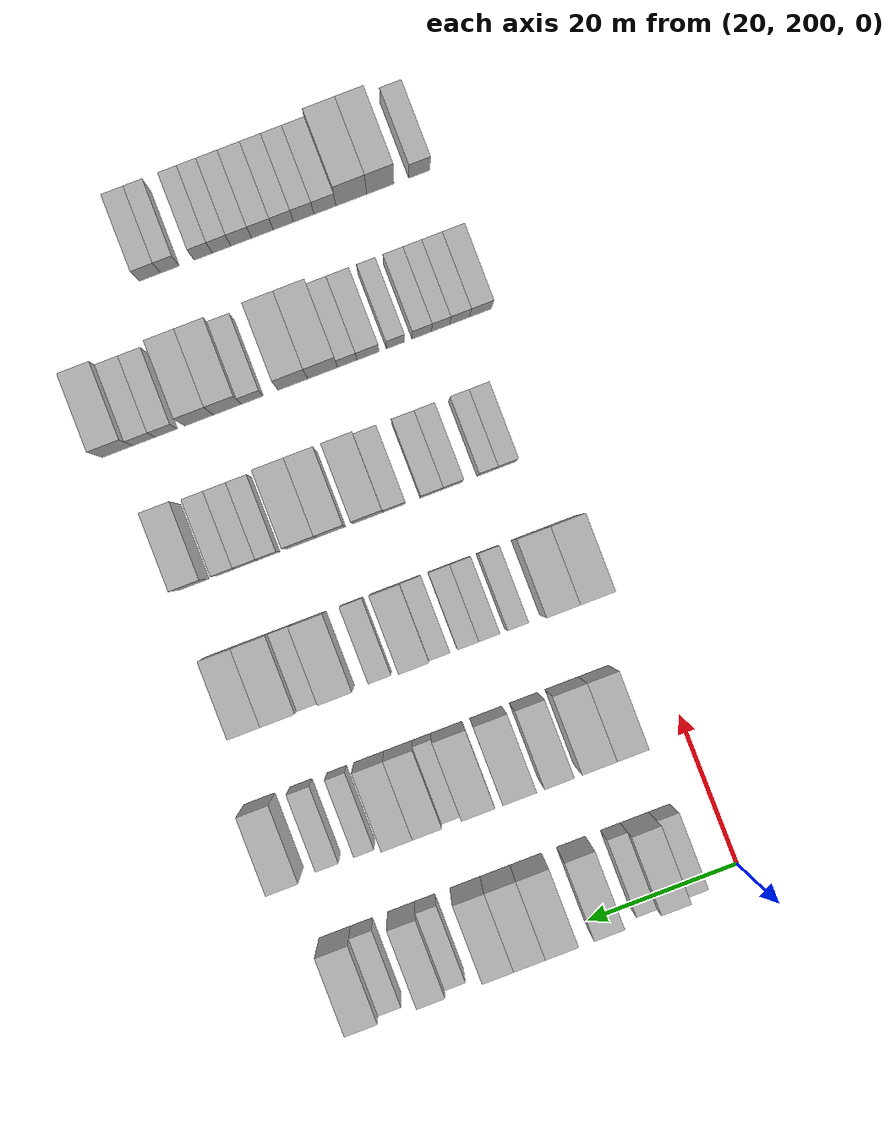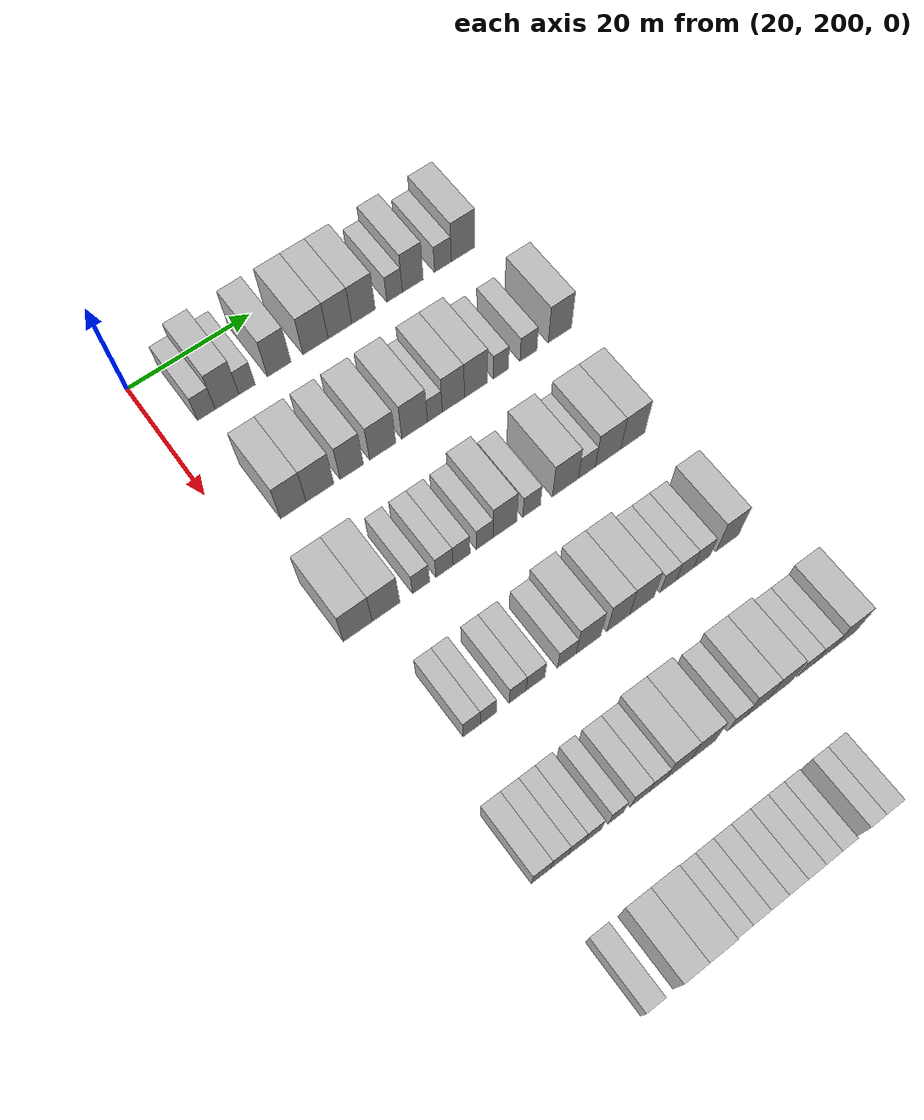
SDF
<sdf version="1.6">
 <world name="default">
  <model name="building_141">
   <static>1</static>
   <pose>25.0000 206.6023 0 0.000000 0.000000 0.000000</pose>
   <link name="link">
    <pose>0 0 3.00 0 0 0</pose>
    <collision name="collision"><geometry><box><size>10.0000 2.8620 6.0000</size></box></geometry></collision>
    <visual name="visual">
     <cast_shadows>0</cast_shadows>
     <geometry><box><size>10.0000 2.8620 6.0000</size></box></geometry>
     <material>
      <script>
       <uri>model://HANNAS_wall/materials/scripts</uri>
       <uri>model://HANNAS_wall/materials/textures</uri>
       <name>vrc/HANNAS_wall</name>
      </script>
     </material>
    </visual>
   </link>
  </model>
  <model name="building_142">
   <static>1</static>
   <pose>25.0000 209.9455 0 0.000000 0.000000 0.000000</pose>
   <link name="link">
    <pose>0 0 4.50 0 0 0</pose>
    <collision name="collision"><geometry><box><size>10.0000 3.8244 9.0000</size></box></geometry></collision>
    <visual name="visual">
     <cast_shadows>0</cast_shadows>
     <geometry><box><size>10.0000 3.8244 9.0000</size></box></geometry>
     <material>
      <script>
       <uri>model://HANNAS_wall/materials/scripts</uri>
       <uri>model://HANNAS_wall/materials/textures</uri>
       <name>vrc/HANNAS_wall</name>
      </script>
     </material>
    </visual>
   </link>
  </model>
  <model name="building_143">
   <static>1</static>
   <pose>25.0000 213.1919 0 0.000000 0.000000 0.000000</pose>
   <link name="link">
    <pose>0 0 3.00 0 0 0</pose>
    <collision name="collision"><geometry><box><size>10.0000 2.6684 6.0000</size></box></geometry></collision>
    <visual name="visual">
     <cast_shadows>0</cast_shadows>
     <geometry><box><size>10.0000 2.6684 6.0000</size></box></geometry>
     <material>
      <script>
       <uri>model://HANNAS_wall/materials/scripts</uri>
       <uri>model://HANNAS_wall/materials/textures</uri>
       <name>vrc/HANNAS_wall</name>
      </script>
     </material>
    </visual>
   </link>
  </model>
  <model name="building_144">
   <static>1</static>
   <pose>25.0000 218.4751 0 0.000000 0.000000 0.000000</pose>
   <link name="link">
    <pose>0 0 4.50 0 0 0</pose>
    <collision name="collision"><geometry><box><size>10.0000 3.8980 9.0000</size></box></geometry></collision>
    <visual name="visual">
     <cast_shadows>0</cast_shadows>
     <geometry><box><size>10.0000 3.8980 9.0000</size></box></geometry>
     <material>
      <script>
       <uri>model://HANNAS_wall/materials/scripts</uri>
       <uri>model://HANNAS_wall/materials/textures</uri>
       <name>vrc/HANNAS_wall</name>
      </script>
     </material>
    </visual>
   </link>
  </model>
  <model name="building_145">
   <static>1</static>
   <pose>25.0000 224.5421 0 0.000000 0.000000 0.000000</pose>
   <link name="link">
    <pose>0 0 4.50 0 0 0</pose>
    <collision name="collision"><geometry><box><size>10.0000 4.2361 9.0000</size></box></geometry></collision>
    <visual name="visual">
     <cast_shadows>0</cast_shadows>
     <geometry><box><size>10.0000 4.2361 9.0000</size></box></geometry>
     <material>
      <script>
       <uri>model://HANNAS_wall/materials/scripts</uri>
       <uri>model://HANNAS_wall/materials/textures</uri>
       <name>vrc/HANNAS_wall</name>
      </script>
     </material>
    </visual>
   </link>
  </model>
  <model name="building_146">
   <static>1</static>
   <pose>25.0000 228.6811 0 0.000000 0.000000 0.000000</pose>
   <link name="link">
    <pose>0 0 4.50 0 0 0</pose>
    <collision name="collision"><geometry><box><size>10.0000 4.0419 9.0000</size></box></geometry></collision>
    <visual name="visual">
     <cast_shadows>0</cast_shadows>
     <geometry><box><size>10.0000 4.0419 9.0000</size></box></geometry>
     <material>
      <script>
       <uri>model://HANNAS_wall/materials/scripts</uri>
       <uri>model://HANNAS_wall/materials/textures</uri>
       <name>vrc/HANNAS_wall</name>
      </script>
     </material>
    </visual>
   </link>
  </model>
  <model name="building_147">
   <static>1</static>
   <pose>25.0000 232.7132 0 0.000000 0.000000 0.000000</pose>
   <link name="link">
    <pose>0 0 4.50 0 0 0</pose>
    <collision name="collision"><geometry><box><size>10.0000 4.0221 9.0000</size></box></geometry></collision>
    <visual name="visual">
     <cast_shadows>0</cast_shadows>
     <geometry><box><size>10.0000 4.0221 9.0000</size></box></geometry>
     <material>
      <script>
       <uri>model://HANNAS_wall/materials/scripts</uri>
       <uri>model://HANNAS_wall/materials/textures</uri>
       <name>vrc/HANNAS_wall</name>
      </script>
     </material>
    </visual>
   </link>
  </model>
  <model name="building_148">
   <static>1</static>
   <pose>25.0000 238.0860 0 0.000000 0.000000 0.000000</pose>
   <link name="link">
    <pose>0 0 3.00 0 0 0</pose>
    <collision name="collision"><geometry><box><size>10.0000 2.7236 6.0000</size></box></geometry></collision>
    <visual name="visual">
     <cast_shadows>0</cast_shadows>
     <geometry><box><size>10.0000 2.7236 6.0000</size></box></geometry>
     <material>
      <script>
       <uri>model://HANNAS_wall/materials/scripts</uri>
       <uri>model://HANNAS_wall/materials/textures</uri>
       <name>vrc/HANNAS_wall</name>
      </script>
     </material>
    </visual>
   </link>
  </model>
  <model name="building_149">
   <static>1</static>
   <pose>25.0000 241.2741 0 0.000000 0.000000 0.000000</pose>
   <link name="link">
    <pose>0 0 4.50 0 0 0</pose>
    <collision name="collision"><geometry><box><size>10.0000 3.6525 9.0000</size></box></geometry></collision>
    <visual name="visual">
     <cast_shadows>0</cast_shadows>
     <geometry><box><size>10.0000 3.6525 9.0000</size></box></geometry>
     <material>
      <script>
       <uri>model://HANNAS_wall/materials/scripts</uri>
       <uri>model://HANNAS_wall/materials/textures</uri>
       <name>vrc/HANNAS_wall</name>
      </script>
     </material>
    </visual>
   </link>
  </model>
  <model name="building_150">
   <static>1</static>
   <pose>25.0000 246.5904 0 0.000000 0.000000 0.000000</pose>
   <link name="link">
    <pose>0 0 3.00 0 0 0</pose>
    <collision name="collision"><geometry><box><size>10.0000 2.9801 6.0000</size></box></geometry></collision>
    <visual name="visual">
     <cast_shadows>0</cast_shadows>
     <geometry><box><size>10.0000 2.9801 6.0000</size></box></geometry>
     <material>
      <script>
       <uri>model://HANNAS_wall/materials/scripts</uri>
       <uri>model://HANNAS_wall/materials/textures</uri>
       <name>vrc/HANNAS_wall</name>
      </script>
     </material>
    </visual>
   </link>
  </model>
  <model name="building_151">
   <static>1</static>
   <pose>25.0000 250.1908 0 0.000000 0.000000 0.000000</pose>
   <link name="link">
    <pose>0 0 4.50 0 0 0</pose>
    <collision name="collision"><geometry><box><size>10.0000 4.2207 9.0000</size></box></geometry></collision>
    <visual name="visual">
     <cast_shadows>0</cast_shadows>
     <geometry><box><size>10.0000 4.2207 9.0000</size></box></geometry>
     <material>
      <script>
       <uri>model://HANNAS_wall/materials/scripts</uri>
       <uri>model://HANNAS_wall/materials/textures</uri>
       <name>vrc/HANNAS_wall</name>
      </script>
     </material>
    </visual>
   </link>
  </model>
  <model name="building_307">
   <static>1</static>
   <pose>44.0000 208.1948 0 0.000000 0.000000 0.000000</pose>
   <link name="link">
    <pose>0 0 4.50 0 0 0</pose>
    <collision name="collision"><geometry><box><size>10.0000 4.0620 9.0000</size></box></geometry></collision>
    <visual name="visual">
     <cast_shadows>0</cast_shadows>
     <geometry><box><size>10.0000 4.0620 9.0000</size></box></geometry>
     <material>
      <script>
       <uri>model://HANNAS_wall/materials/scripts</uri>
       <uri>model://HANNAS_wall/materials/textures</uri>
       <name>vrc/HANNAS_wall</name>
      </script>
     </material>
    </visual>
   </link>
  </model>
  <model name="building_308">
   <static>1</static>
   <pose>44.0000 212.4583 0 0.000000 0.000000 0.000000</pose>
   <link name="link">
    <pose>0 0 4.50 0 0 0</pose>
    <collision name="collision"><geometry><box><size>10.0000 4.4650 9.0000</size></box></geometry></collision>
    <visual name="visual">
     <cast_shadows>0</cast_shadows>
     <geometry><box><size>10.0000 4.4650 9.0000</size></box></geometry>
     <material>
      <script>
       <uri>model://HANNAS_wall/materials/scripts</uri>
       <uri>model://HANNAS_wall/materials/textures</uri>
       <name>vrc/HANNAS_wall</name>
      </script>
     </material>
    </visual>
   </link>
  </model>
  <model name="building_309">
   <static>1</static>
   <pose>44.0000 217.5935 0 0.000000 0.000000 0.000000</pose>
   <link name="link">
    <pose>0 0 4.50 0 0 0</pose>
    <collision name="collision"><geometry><box><size>10.0000 3.8054 9.0000</size></box></geometry></collision>
    <visual name="visual">
     <cast_shadows>0</cast_shadows>
     <geometry><box><size>10.0000 3.8054 9.0000</size></box></geometry>
     <material>
      <script>
       <uri>model://HANNAS_wall/materials/scripts</uri>
       <uri>model://HANNAS_wall/materials/textures</uri>
       <name>vrc/HANNAS_wall</name>
      </script>
     </material>
    </visual>
   </link>
  </model>
  <model name="building_310">
   <static>1</static>
   <pose>44.0000 222.6584 0 0.000000 0.000000 0.000000</pose>
   <link name="link">
    <pose>0 0 4.50 0 0 0</pose>
    <collision name="collision"><geometry><box><size>10.0000 4.3245 9.0000</size></box></geometry></collision>
    <visual name="visual">
     <cast_shadows>0</cast_shadows>
     <geometry><box><size>10.0000 4.3245 9.0000</size></box></geometry>
     <material>
      <script>
       <uri>model://HANNAS_wall/materials/scripts</uri>
       <uri>model://HANNAS_wall/materials/textures</uri>
       <name>vrc/HANNAS_wall</name>
      </script>
     </material>
    </visual>
   </link>
  </model>
  <model name="building_311">
   <static>1</static>
   <pose>44.0000 227.9545 0 0.000000 0.000000 0.000000</pose>
   <link name="link">
    <pose>0 0 4.50 0 0 0</pose>
    <collision name="collision"><geometry><box><size>10.0000 4.2676 9.0000</size></box></geometry></collision>
    <visual name="visual">
     <cast_shadows>0</cast_shadows>
     <geometry><box><size>10.0000 4.2676 9.0000</size></box></geometry>
     <material>
      <script>
       <uri>model://HANNAS_wall/materials/scripts</uri>
       <uri>model://HANNAS_wall/materials/textures</uri>
       <name>vrc/HANNAS_wall</name>
      </script>
     </material>
    </visual>
   </link>
  </model>
  <model name="building_312">
   <static>1</static>
   <pose>44.0000 231.3356 0 0.000000 0.000000 0.000000</pose>
   <link name="link">
    <pose>0 0 3.00 0 0 0</pose>
    <collision name="collision"><geometry><box><size>10.0000 2.4947 6.0000</size></box></geometry></collision>
    <visual name="visual">
     <cast_shadows>0</cast_shadows>
     <geometry><box><size>10.0000 2.4947 6.0000</size></box></geometry>
     <material>
      <script>
       <uri>model://HANNAS_wall/materials/scripts</uri>
       <uri>model://HANNAS_wall/materials/textures</uri>
       <name>vrc/HANNAS_wall</name>
      </script>
     </material>
    </visual>
   </link>
  </model>
  <model name="building_313">
   <static>1</static>
   <pose>44.0000 234.4713 0 0.000000 0.000000 0.000000</pose>
   <link name="link">
    <pose>0 0 4.50 0 0 0</pose>
    <collision name="collision"><geometry><box><size>10.0000 3.7766 9.0000</size></box></geometry></collision>
    <visual name="visual">
     <cast_shadows>0</cast_shadows>
     <geometry><box><size>10.0000 3.7766 9.0000</size></box></geometry>
     <material>
      <script>
       <uri>model://HANNAS_wall/materials/scripts</uri>
       <uri>model://HANNAS_wall/materials/textures</uri>
       <name>vrc/HANNAS_wall</name>
      </script>
     </material>
    </visual>
   </link>
  </model>
  <model name="building_314">
   <static>1</static>
   <pose>44.0000 238.3430 0 0.000000 0.000000 0.000000</pose>
   <link name="link">
    <pose>0 0 4.50 0 0 0</pose>
    <collision name="collision"><geometry><box><size>10.0000 3.9669 9.0000</size></box></geometry></collision>
    <visual name="visual">
     <cast_shadows>0</cast_shadows>
     <geometry><box><size>10.0000 3.9669 9.0000</size></box></geometry>
     <material>
      <script>
       <uri>model://HANNAS_wall/materials/scripts</uri>
       <uri>model://HANNAS_wall/materials/textures</uri>
       <name>vrc/HANNAS_wall</name>
      </script>
     </material>
    </visual>
   </link>
  </model>
  <model name="building_315">
   <static>1</static>
   <pose>44.0000 242.6375 0 0.000000 0.000000 0.000000</pose>
   <link name="link">
    <pose>0 0 3.00 0 0 0</pose>
    <collision name="collision"><geometry><box><size>10.0000 2.6220 6.0000</size></box></geometry></collision>
    <visual name="visual">
     <cast_shadows>0</cast_shadows>
     <geometry><box><size>10.0000 2.6220 6.0000</size></box></geometry>
     <material>
      <script>
       <uri>model://HANNAS_wall/materials/scripts</uri>
       <uri>model://HANNAS_wall/materials/textures</uri>
       <name>vrc/HANNAS_wall</name>
      </script>
     </material>
    </visual>
   </link>
  </model>
  <model name="building_316">
   <static>1</static>
   <pose>44.0000 247.4407 0 0.000000 0.000000 0.000000</pose>
   <link name="link">
    <pose>0 0 3.00 0 0 0</pose>
    <collision name="collision"><geometry><box><size>10.0000 2.9845 6.0000</size></box></geometry></collision>
    <visual name="visual">
     <cast_shadows>0</cast_shadows>
     <geometry><box><size>10.0000 2.9845 6.0000</size></box></geometry>
     <material>
      <script>
       <uri>model://HANNAS_wall/materials/scripts</uri>
       <uri>model://HANNAS_wall/materials/textures</uri>
       <name>vrc/HANNAS_wall</name>
      </script>
     </material>
    </visual>
   </link>
  </model>
  <model name="building_317">
   <static>1</static>
   <pose>44.0000 253.0056 0 0.000000 0.000000 0.000000</pose>
   <link name="link">
    <pose>0 0 4.50 0 0 0</pose>
    <collision name="collision"><geometry><box><size>10.0000 4.1452 9.0000</size></box></geometry></collision>
    <visual name="visual">
     <cast_shadows>0</cast_shadows>
     <geometry><box><size>10.0000 4.1452 9.0000</size></box></geometry>
     <material>
      <script>
       <uri>model://HANNAS_wall/materials/scripts</uri>
       <uri>model://HANNAS_wall/materials/textures</uri>
       <name>vrc/HANNAS_wall</name>
      </script>
     </material>
    </visual>
   </link>
  </model>
  <model name="building_472">
   <static>1</static>
   <pose>63.0000 205.4028 0 0.000000 0.000000 0.000000</pose>
   <link name="link">
    <pose>0 0 4.50 0 0 0</pose>
    <collision name="collision"><geometry><box><size>10.0000 4.4702 9.0000</size></box></geometry></collision>
    <visual name="visual">
     <cast_shadows>0</cast_shadows>
     <geometry><box><size>10.0000 4.4702 9.0000</size></box></geometry>
     <material>
      <script>
       <uri>model://HANNAS_wall/materials/scripts</uri>
       <uri>model://HANNAS_wall/materials/textures</uri>
       <name>vrc/HANNAS_wall</name>
      </script>
     </material>
    </visual>
   </link>
  </model>
  <model name="building_473">
   <static>1</static>
   <pose>63.0000 209.8034 0 0.000000 0.000000 0.000000</pose>
   <link name="link">
    <pose>0 0 4.50 0 0 0</pose>
    <collision name="collision"><geometry><box><size>10.0000 4.3310 9.0000</size></box></geometry></collision>
    <visual name="visual">
     <cast_shadows>0</cast_shadows>
     <geometry><box><size>10.0000 4.3310 9.0000</size></box></geometry>
     <material>
      <script>
       <uri>model://HANNAS_wall/materials/scripts</uri>
       <uri>model://HANNAS_wall/materials/textures</uri>
       <name>vrc/HANNAS_wall</name>
      </script>
     </material>
    </visual>
   </link>
  </model>
  <model name="building_474">
   <static>1</static>
   <pose>63.0000 215.3324 0 0.000000 0.000000 0.000000</pose>
   <link name="link">
    <pose>0 0 3.00 0 0 0</pose>
    <collision name="collision"><geometry><box><size>10.0000 2.7271 6.0000</size></box></geometry></collision>
    <visual name="visual">
     <cast_shadows>0</cast_shadows>
     <geometry><box><size>10.0000 2.7271 6.0000</size></box></geometry>
     <material>
      <script>
       <uri>model://HANNAS_wall/materials/scripts</uri>
       <uri>model://HANNAS_wall/materials/textures</uri>
       <name>vrc/HANNAS_wall</name>
      </script>
     </material>
    </visual>
   </link>
  </model>
  <model name="building_475">
   <static>1</static>
   <pose>63.0000 219.0671 0 0.000000 0.000000 0.000000</pose>
   <link name="link">
    <pose>0 0 3.00 0 0 0</pose>
    <collision name="collision"><geometry><box><size>10.0000 2.7422 6.0000</size></box></geometry></collision>
    <visual name="visual">
     <cast_shadows>0</cast_shadows>
     <geometry><box><size>10.0000 2.7422 6.0000</size></box></geometry>
     <material>
      <script>
       <uri>model://HANNAS_wall/materials/scripts</uri>
       <uri>model://HANNAS_wall/materials/textures</uri>
       <name>vrc/HANNAS_wall</name>
      </script>
     </material>
    </visual>
   </link>
  </model>
  <model name="building_476">
   <static>1</static>
   <pose>63.0000 221.8131 0 0.000000 0.000000 0.000000</pose>
   <link name="link">
    <pose>0 0 3.00 0 0 0</pose>
    <collision name="collision"><geometry><box><size>10.0000 2.7499 6.0000</size></box></geometry></collision>
    <visual name="visual">
     <cast_shadows>0</cast_shadows>
     <geometry><box><size>10.0000 2.7499 6.0000</size></box></geometry>
     <material>
      <script>
       <uri>model://HANNAS_wall/materials/scripts</uri>
       <uri>model://HANNAS_wall/materials/textures</uri>
       <name>vrc/HANNAS_wall</name>
      </script>
     </material>
    </visual>
   </link>
  </model>
  <model name="building_477">
   <static>1</static>
   <pose>63.0000 225.5611 0 0.000000 0.000000 0.000000</pose>
   <link name="link">
    <pose>0 0 3.00 0 0 0</pose>
    <collision name="collision"><geometry><box><size>10.0000 2.7461 6.0000</size></box></geometry></collision>
    <visual name="visual">
     <cast_shadows>0</cast_shadows>
     <geometry><box><size>10.0000 2.7461 6.0000</size></box></geometry>
     <material>
      <script>
       <uri>model://HANNAS_wall/materials/scripts</uri>
       <uri>model://HANNAS_wall/materials/textures</uri>
       <name>vrc/HANNAS_wall</name>
      </script>
     </material>
    </visual>
   </link>
  </model>
  <model name="building_478">
   <static>1</static>
   <pose>63.0000 228.8887 0 0.000000 0.000000 0.000000</pose>
   <link name="link">
    <pose>0 0 4.50 0 0 0</pose>
    <collision name="collision"><geometry><box><size>10.0000 3.9091 9.0000</size></box></geometry></collision>
    <visual name="visual">
     <cast_shadows>0</cast_shadows>
     <geometry><box><size>10.0000 3.9091 9.0000</size></box></geometry>
     <material>
      <script>
       <uri>model://HANNAS_wall/materials/scripts</uri>
       <uri>model://HANNAS_wall/materials/textures</uri>
       <name>vrc/HANNAS_wall</name>
      </script>
     </material>
    </visual>
   </link>
  </model>
  <model name="building_479">
   <static>1</static>
   <pose>63.0000 233.3253 0 0.000000 0.000000 0.000000</pose>
   <link name="link">
    <pose>0 0 3.00 0 0 0</pose>
    <collision name="collision"><geometry><box><size>10.0000 2.9641 6.0000</size></box></geometry></collision>
    <visual name="visual">
     <cast_shadows>0</cast_shadows>
     <geometry><box><size>10.0000 2.9641 6.0000</size></box></geometry>
     <material>
      <script>
       <uri>model://HANNAS_wall/materials/scripts</uri>
       <uri>model://HANNAS_wall/materials/textures</uri>
       <name>vrc/HANNAS_wall</name>
      </script>
     </material>
    </visual>
   </link>
  </model>
  <model name="building_480">
   <static>1</static>
   <pose>63.0000 239.0047 0 0.000000 0.000000 0.000000</pose>
   <link name="link">
    <pose>0 0 4.50 0 0 0</pose>
    <collision name="collision"><geometry><box><size>10.0000 4.3946 9.0000</size></box></geometry></collision>
    <visual name="visual">
     <cast_shadows>0</cast_shadows>
     <geometry><box><size>10.0000 4.3946 9.0000</size></box></geometry>
     <material>
      <script>
       <uri>model://HANNAS_wall/materials/scripts</uri>
       <uri>model://HANNAS_wall/materials/textures</uri>
       <name>vrc/HANNAS_wall</name>
      </script>
     </material>
    </visual>
   </link>
  </model>
  <model name="building_481">
   <static>1</static>
   <pose>63.0000 242.6475 0 0.000000 0.000000 0.000000</pose>
   <link name="link">
    <pose>0 0 3.00 0 0 0</pose>
    <collision name="collision"><geometry><box><size>10.0000 2.8909 6.0000</size></box></geometry></collision>
    <visual name="visual">
     <cast_shadows>0</cast_shadows>
     <geometry><box><size>10.0000 2.8909 6.0000</size></box></geometry>
     <material>
      <script>
       <uri>model://HANNAS_wall/materials/scripts</uri>
       <uri>model://HANNAS_wall/materials/textures</uri>
       <name>vrc/HANNAS_wall</name>
      </script>
     </material>
    </visual>
   </link>
  </model>
  <model name="building_482">
   <static>1</static>
   <pose>63.0000 246.3105 0 0.000000 0.000000 0.000000</pose>
   <link name="link">
    <pose>0 0 4.50 0 0 0</pose>
    <collision name="collision"><geometry><box><size>10.0000 4.4352 9.0000</size></box></geometry></collision>
    <visual name="visual">
     <cast_shadows>0</cast_shadows>
     <geometry><box><size>10.0000 4.4352 9.0000</size></box></geometry>
     <material>
      <script>
       <uri>model://HANNAS_wall/materials/scripts</uri>
       <uri>model://HANNAS_wall/materials/textures</uri>
       <name>vrc/HANNAS_wall</name>
      </script>
     </material>
    </visual>
   </link>
  </model>
  <model name="building_483">
   <static>1</static>
   <pose>63.0000 250.6296 0 0.000000 0.000000 0.000000</pose>
   <link name="link">
    <pose>0 0 4.50 0 0 0</pose>
    <collision name="collision"><geometry><box><size>10.0000 4.2030 9.0000</size></box></geometry></collision>
    <visual name="visual">
     <cast_shadows>0</cast_shadows>
     <geometry><box><size>10.0000 4.2030 9.0000</size></box></geometry>
     <material>
      <script>
       <uri>model://HANNAS_wall/materials/scripts</uri>
       <uri>model://HANNAS_wall/materials/textures</uri>
       <name>vrc/HANNAS_wall</name>
      </script>
     </material>
    </visual>
   </link>
  </model>
  <model name="building_640">
   <static>1</static>
   <pose>82.0000 209.3153 0 0.000000 0.000000 0.000000</pose>
   <link name="link">
    <pose>0 0 3.00 0 0 0</pose>
    <collision name="collision"><geometry><box><size>10.0000 2.6293 6.0000</size></box></geometry></collision>
    <visual name="visual">
     <cast_shadows>0</cast_shadows>
     <geometry><box><size>10.0000 2.6293 6.0000</size></box></geometry>
     <material>
      <script>
       <uri>model://HANNAS_wall/materials/scripts</uri>
       <uri>model://HANNAS_wall/materials/textures</uri>
       <name>vrc/HANNAS_wall</name>
      </script>
     </material>
    </visual>
   </link>
  </model>
  <model name="building_641">
   <static>1</static>
   <pose>82.0000 211.8683 0 0.000000 0.000000 0.000000</pose>
   <link name="link">
    <pose>0 0 3.00 0 0 0</pose>
    <collision name="collision"><geometry><box><size>10.0000 2.4767 6.0000</size></box></geometry></collision>
    <visual name="visual">
     <cast_shadows>0</cast_shadows>
     <geometry><box><size>10.0000 2.4767 6.0000</size></box></geometry>
     <material>
      <script>
       <uri>model://HANNAS_wall/materials/scripts</uri>
       <uri>model://HANNAS_wall/materials/textures</uri>
       <name>vrc/HANNAS_wall</name>
      </script>
     </material>
    </visual>
   </link>
  </model>
  <model name="building_642">
   <static>1</static>
   <pose>82.0000 216.4439 0 0.000000 0.000000 0.000000</pose>
   <link name="link">
    <pose>0 0 3.00 0 0 0</pose>
    <collision name="collision"><geometry><box><size>10.0000 2.6745 6.0000</size></box></geometry></collision>
    <visual name="visual">
     <cast_shadows>0</cast_shadows>
     <geometry><box><size>10.0000 2.6745 6.0000</size></box></geometry>
     <material>
      <script>
       <uri>model://HANNAS_wall/materials/scripts</uri>
       <uri>model://HANNAS_wall/materials/textures</uri>
       <name>vrc/HANNAS_wall</name>
      </script>
     </material>
    </visual>
   </link>
  </model>
  <model name="building_643">
   <static>1</static>
   <pose>82.0000 219.2580 0 0.000000 0.000000 0.000000</pose>
   <link name="link">
    <pose>0 0 3.00 0 0 0</pose>
    <collision name="collision"><geometry><box><size>10.0000 2.9537 6.0000</size></box></geometry></collision>
    <visual name="visual">
     <cast_shadows>0</cast_shadows>
     <geometry><box><size>10.0000 2.9537 6.0000</size></box></geometry>
     <material>
      <script>
       <uri>model://HANNAS_wall/materials/scripts</uri>
       <uri>model://HANNAS_wall/materials/textures</uri>
       <name>vrc/HANNAS_wall</name>
      </script>
     </material>
    </visual>
   </link>
  </model>
  <model name="building_644">
   <static>1</static>
   <pose>82.0000 224.2303 0 0.000000 0.000000 0.000000</pose>
   <link name="link">
    <pose>0 0 3.00 0 0 0</pose>
    <collision name="collision"><geometry><box><size>10.0000 2.9909 6.0000</size></box></geometry></collision>
    <visual name="visual">
     <cast_shadows>0</cast_shadows>
     <geometry><box><size>10.0000 2.9909 6.0000</size></box></geometry>
     <material>
      <script>
       <uri>model://HANNAS_wall/materials/scripts</uri>
       <uri>model://HANNAS_wall/materials/textures</uri>
       <name>vrc/HANNAS_wall</name>
      </script>
     </material>
    </visual>
   </link>
  </model>
  <model name="building_645">
   <static>1</static>
   <pose>82.0000 227.7241 0 0.000000 0.000000 0.000000</pose>
   <link name="link">
    <pose>0 0 4.50 0 0 0</pose>
    <collision name="collision"><geometry><box><size>10.0000 3.9968 9.0000</size></box></geometry></collision>
    <visual name="visual">
     <cast_shadows>0</cast_shadows>
     <geometry><box><size>10.0000 3.9968 9.0000</size></box></geometry>
     <material>
      <script>
       <uri>model://HANNAS_wall/materials/scripts</uri>
       <uri>model://HANNAS_wall/materials/textures</uri>
       <name>vrc/HANNAS_wall</name>
      </script>
     </material>
    </visual>
   </link>
  </model>
  <model name="building_646">
   <static>1</static>
   <pose>82.0000 232.5949 0 0.000000 0.000000 0.000000</pose>
   <link name="link">
    <pose>0 0 4.50 0 0 0</pose>
    <collision name="collision"><geometry><box><size>10.0000 3.7448 9.0000</size></box></geometry></collision>
    <visual name="visual">
     <cast_shadows>0</cast_shadows>
     <geometry><box><size>10.0000 3.7448 9.0000</size></box></geometry>
     <material>
      <script>
       <uri>model://HANNAS_wall/materials/scripts</uri>
       <uri>model://HANNAS_wall/materials/textures</uri>
       <name>vrc/HANNAS_wall</name>
      </script>
     </material>
    </visual>
   </link>
  </model>
  <model name="building_647">
   <static>1</static>
   <pose>82.0000 236.5076 0 0.000000 0.000000 0.000000</pose>
   <link name="link">
    <pose>0 0 4.50 0 0 0</pose>
    <collision name="collision"><geometry><box><size>10.0000 4.0805 9.0000</size></box></geometry></collision>
    <visual name="visual">
     <cast_shadows>0</cast_shadows>
     <geometry><box><size>10.0000 4.0805 9.0000</size></box></geometry>
     <material>
      <script>
       <uri>model://HANNAS_wall/materials/scripts</uri>
       <uri>model://HANNAS_wall/materials/textures</uri>
       <name>vrc/HANNAS_wall</name>
      </script>
     </material>
    </visual>
   </link>
  </model>
  <model name="building_648">
   <static>1</static>
   <pose>82.0000 240.9027 0 0.000000 0.000000 0.000000</pose>
   <link name="link">
    <pose>0 0 3.00 0 0 0</pose>
    <collision name="collision"><geometry><box><size>10.0000 2.7098 6.0000</size></box></geometry></collision>
    <visual name="visual">
     <cast_shadows>0</cast_shadows>
     <geometry><box><size>10.0000 2.7098 6.0000</size></box></geometry>
     <material>
      <script>
       <uri>model://HANNAS_wall/materials/scripts</uri>
       <uri>model://HANNAS_wall/materials/textures</uri>
       <name>vrc/HANNAS_wall</name>
      </script>
     </material>
    </visual>
   </link>
  </model>
  <model name="building_649">
   <static>1</static>
   <pose>82.0000 243.7323 0 0.000000 0.000000 0.000000</pose>
   <link name="link">
    <pose>0 0 3.00 0 0 0</pose>
    <collision name="collision"><geometry><box><size>10.0000 2.9493 6.0000</size></box></geometry></collision>
    <visual name="visual">
     <cast_shadows>0</cast_shadows>
     <geometry><box><size>10.0000 2.9493 6.0000</size></box></geometry>
     <material>
      <script>
       <uri>model://HANNAS_wall/materials/scripts</uri>
       <uri>model://HANNAS_wall/materials/textures</uri>
       <name>vrc/HANNAS_wall</name>
      </script>
     </material>
    </visual>
   </link>
  </model>
  <model name="building_650">
   <static>1</static>
   <pose>82.0000 246.6248 0 0.000000 0.000000 0.000000</pose>
   <link name="link">
    <pose>0 0 3.00 0 0 0</pose>
    <collision name="collision"><geometry><box><size>10.0000 2.8359 6.0000</size></box></geometry></collision>
    <visual name="visual">
     <cast_shadows>0</cast_shadows>
     <geometry><box><size>10.0000 2.8359 6.0000</size></box></geometry>
     <material>
      <script>
       <uri>model://HANNAS_wall/materials/scripts</uri>
       <uri>model://HANNAS_wall/materials/textures</uri>
       <name>vrc/HANNAS_wall</name>
      </script>
     </material>
    </visual>
   </link>
  </model>
  <model name="building_651">
   <static>1</static>
   <pose>82.0000 250.9999 0 0.000000 0.000000 0.000000</pose>
   <link name="link">
    <pose>0 0 4.50 0 0 0</pose>
    <collision name="collision"><geometry><box><size>10.0000 3.9143 9.0000</size></box></geometry></collision>
    <visual name="visual">
     <cast_shadows>0</cast_shadows>
     <geometry><box><size>10.0000 3.9143 9.0000</size></box></geometry>
     <material>
      <script>
       <uri>model://HANNAS_wall/materials/scripts</uri>
       <uri>model://HANNAS_wall/materials/textures</uri>
       <name>vrc/HANNAS_wall</name>
      </script>
     </material>
    </visual>
   </link>
  </model>
  <model name="building_813">
   <static>1</static>
   <pose>101.0000 205.3924 0 0.000000 0.000000 0.000000</pose>
   <link name="link">
    <pose>0 0 3.00 0 0 0</pose>
    <collision name="collision"><geometry><box><size>10.0000 2.9034 6.0000</size></box></geometry></collision>
    <visual name="visual">
     <cast_shadows>0</cast_shadows>
     <geometry><box><size>10.0000 2.9034 6.0000</size></box></geometry>
     <material>
      <script>
       <uri>model://HANNAS_wall/materials/scripts</uri>
       <uri>model://HANNAS_wall/materials/textures</uri>
       <name>vrc/HANNAS_wall</name>
      </script>
     </material>
    </visual>
   </link>
  </model>
  <model name="building_814">
   <static>1</static>
   <pose>101.0000 208.1830 0 0.000000 0.000000 0.000000</pose>
   <link name="link">
    <pose>0 0 3.00 0 0 0</pose>
    <collision name="collision"><geometry><box><size>10.0000 2.6778 6.0000</size></box></geometry></collision>
    <visual name="visual">
     <cast_shadows>0</cast_shadows>
     <geometry><box><size>10.0000 2.6778 6.0000</size></box></geometry>
     <material>
      <script>
       <uri>model://HANNAS_wall/materials/scripts</uri>
       <uri>model://HANNAS_wall/materials/textures</uri>
       <name>vrc/HANNAS_wall</name>
      </script>
     </material>
    </visual>
   </link>
  </model>
  <model name="building_815">
   <static>1</static>
   <pose>101.0000 210.7397 0 0.000000 0.000000 0.000000</pose>
   <link name="link">
    <pose>0 0 3.00 0 0 0</pose>
    <collision name="collision"><geometry><box><size>10.0000 2.4357 6.0000</size></box></geometry></collision>
    <visual name="visual">
     <cast_shadows>0</cast_shadows>
     <geometry><box><size>10.0000 2.4357 6.0000</size></box></geometry>
     <material>
      <script>
       <uri>model://HANNAS_wall/materials/scripts</uri>
       <uri>model://HANNAS_wall/materials/textures</uri>
       <name>vrc/HANNAS_wall</name>
      </script>
     </material>
    </visual>
   </link>
  </model>
  <model name="building_816">
   <static>1</static>
   <pose>101.0000 213.2609 0 0.000000 0.000000 0.000000</pose>
   <link name="link">
    <pose>0 0 3.00 0 0 0</pose>
    <collision name="collision"><geometry><box><size>10.0000 2.6067 6.0000</size></box></geometry></collision>
    <visual name="visual">
     <cast_shadows>0</cast_shadows>
     <geometry><box><size>10.0000 2.6067 6.0000</size></box></geometry>
     <material>
      <script>
       <uri>model://HANNAS_wall/materials/scripts</uri>
       <uri>model://HANNAS_wall/materials/textures</uri>
       <name>vrc/HANNAS_wall</name>
      </script>
     </material>
    </visual>
   </link>
  </model>
  <model name="building_817">
   <static>1</static>
   <pose>101.0000 216.7767 0 0.000000 0.000000 0.000000</pose>
   <link name="link">
    <pose>0 0 3.00 0 0 0</pose>
    <collision name="collision"><geometry><box><size>10.0000 2.4251 6.0000</size></box></geometry></collision>
    <visual name="visual">
     <cast_shadows>0</cast_shadows>
     <geometry><box><size>10.0000 2.4251 6.0000</size></box></geometry>
     <material>
      <script>
       <uri>model://HANNAS_wall/materials/scripts</uri>
       <uri>model://HANNAS_wall/materials/textures</uri>
       <name>vrc/HANNAS_wall</name>
      </script>
     </material>
    </visual>
   </link>
  </model>
  <model name="building_818">
   <static>1</static>
   <pose>101.0000 220.4711 0 0.000000 0.000000 0.000000</pose>
   <link name="link">
    <pose>0 0 3.00 0 0 0</pose>
    <collision name="collision"><geometry><box><size>10.0000 2.9637 6.0000</size></box></geometry></collision>
    <visual name="visual">
     <cast_shadows>0</cast_shadows>
     <geometry><box><size>10.0000 2.9637 6.0000</size></box></geometry>
     <material>
      <script>
       <uri>model://HANNAS_wall/materials/scripts</uri>
       <uri>model://HANNAS_wall/materials/textures</uri>
       <name>vrc/HANNAS_wall</name>
      </script>
     </material>
    </visual>
   </link>
  </model>
  <model name="building_819">
   <static>1</static>
   <pose>101.0000 223.2474 0 0.000000 0.000000 0.000000</pose>
   <link name="link">
    <pose>0 0 3.00 0 0 0</pose>
    <collision name="collision"><geometry><box><size>10.0000 2.5887 6.0000</size></box></geometry></collision>
    <visual name="visual">
     <cast_shadows>0</cast_shadows>
     <geometry><box><size>10.0000 2.5887 6.0000</size></box></geometry>
     <material>
      <script>
       <uri>model://HANNAS_wall/materials/scripts</uri>
       <uri>model://HANNAS_wall/materials/textures</uri>
       <name>vrc/HANNAS_wall</name>
      </script>
     </material>
    </visual>
   </link>
  </model>
  <model name="building_820">
   <static>1</static>
   <pose>101.0000 226.5416 0 0.000000 0.000000 0.000000</pose>
   <link name="link">
    <pose>0 0 4.50 0 0 0</pose>
    <collision name="collision"><geometry><box><size>10.0000 3.9998 9.0000</size></box></geometry></collision>
    <visual name="visual">
     <cast_shadows>0</cast_shadows>
     <geometry><box><size>10.0000 3.9998 9.0000</size></box></geometry>
     <material>
      <script>
       <uri>model://HANNAS_wall/materials/scripts</uri>
       <uri>model://HANNAS_wall/materials/textures</uri>
       <name>vrc/HANNAS_wall</name>
      </script>
     </material>
    </visual>
   </link>
  </model>
  <model name="building_821">
   <static>1</static>
   <pose>101.0000 230.5266 0 0.000000 0.000000 0.000000</pose>
   <link name="link">
    <pose>0 0 4.50 0 0 0</pose>
    <collision name="collision"><geometry><box><size>10.0000 3.9702 9.0000</size></box></geometry></collision>
    <visual name="visual">
     <cast_shadows>0</cast_shadows>
     <geometry><box><size>10.0000 3.9702 9.0000</size></box></geometry>
     <material>
      <script>
       <uri>model://HANNAS_wall/materials/scripts</uri>
       <uri>model://HANNAS_wall/materials/textures</uri>
       <name>vrc/HANNAS_wall</name>
      </script>
     </material>
    </visual>
   </link>
  </model>
  <model name="building_822">
   <static>1</static>
   <pose>101.0000 235.9645 0 0.000000 0.000000 0.000000</pose>
   <link name="link">
    <pose>0 0 3.00 0 0 0</pose>
    <collision name="collision"><geometry><box><size>10.0000 2.9056 6.0000</size></box></geometry></collision>
    <visual name="visual">
     <cast_shadows>0</cast_shadows>
     <geometry><box><size>10.0000 2.9056 6.0000</size></box></geometry>
     <material>
      <script>
       <uri>model://HANNAS_wall/materials/scripts</uri>
       <uri>model://HANNAS_wall/materials/textures</uri>
       <name>vrc/HANNAS_wall</name>
      </script>
     </material>
    </visual>
   </link>
  </model>
  <model name="building_823">
   <static>1</static>
   <pose>101.0000 239.2951 0 0.000000 0.000000 0.000000</pose>
   <link name="link">
    <pose>0 0 4.50 0 0 0</pose>
    <collision name="collision"><geometry><box><size>10.0000 3.7557 9.0000</size></box></geometry></collision>
    <visual name="visual">
     <cast_shadows>0</cast_shadows>
     <geometry><box><size>10.0000 3.7557 9.0000</size></box></geometry>
     <material>
      <script>
       <uri>model://HANNAS_wall/materials/scripts</uri>
       <uri>model://HANNAS_wall/materials/textures</uri>
       <name>vrc/HANNAS_wall</name>
      </script>
     </material>
    </visual>
   </link>
  </model>
  <model name="building_824">
   <static>1</static>
   <pose>101.0000 243.1091 0 0.000000 0.000000 0.000000</pose>
   <link name="link">
    <pose>0 0 4.50 0 0 0</pose>
    <collision name="collision"><geometry><box><size>10.0000 3.8721 9.0000</size></box></geometry></collision>
    <visual name="visual">
     <cast_shadows>0</cast_shadows>
     <geometry><box><size>10.0000 3.8721 9.0000</size></box></geometry>
     <material>
      <script>
       <uri>model://HANNAS_wall/materials/scripts</uri>
       <uri>model://HANNAS_wall/materials/textures</uri>
       <name>vrc/HANNAS_wall</name>
      </script>
     </material>
    </visual>
   </link>
  </model>
  <model name="building_825">
   <static>1</static>
   <pose>101.0000 247.5191 0 0.000000 0.000000 0.000000</pose>
   <link name="link">
    <pose>0 0 3.00 0 0 0</pose>
    <collision name="collision"><geometry><box><size>10.0000 2.9479 6.0000</size></box></geometry></collision>
    <visual name="visual">
     <cast_shadows>0</cast_shadows>
     <geometry><box><size>10.0000 2.9479 6.0000</size></box></geometry>
     <material>
      <script>
       <uri>model://HANNAS_wall/materials/scripts</uri>
       <uri>model://HANNAS_wall/materials/textures</uri>
       <name>vrc/HANNAS_wall</name>
      </script>
     </material>
    </visual>
   </link>
  </model>
  <model name="building_826">
   <static>1</static>
   <pose>101.0000 250.4905 0 0.000000 0.000000 0.000000</pose>
   <link name="link">
    <pose>0 0 3.00 0 0 0</pose>
    <collision name="collision"><geometry><box><size>10.0000 2.9950 6.0000</size></box></geometry></collision>
    <visual name="visual">
     <cast_shadows>0</cast_shadows>
     <geometry><box><size>10.0000 2.9950 6.0000</size></box></geometry>
     <material>
      <script>
       <uri>model://HANNAS_wall/materials/scripts</uri>
       <uri>model://HANNAS_wall/materials/textures</uri>
       <name>vrc/HANNAS_wall</name>
      </script>
     </material>
    </visual>
   </link>
  </model>
  <model name="building_827">
   <static>1</static>
   <pose>101.0000 254.0455 0 0.000000 0.000000 0.000000</pose>
   <link name="link">
    <pose>0 0 4.50 0 0 0</pose>
    <collision name="collision"><geometry><box><size>10.0000 4.1152 9.0000</size></box></geometry></collision>
    <visual name="visual">
     <cast_shadows>0</cast_shadows>
     <geometry><box><size>10.0000 4.1152 9.0000</size></box></geometry>
     <material>
      <script>
       <uri>model://HANNAS_wall/materials/scripts</uri>
       <uri>model://HANNAS_wall/materials/textures</uri>
       <name>vrc/HANNAS_wall</name>
      </script>
     </material>
    </visual>
   </link>
  </model>
  <model name="building_992">
   <static>1</static>
   <pose>120.0000 206.3259 0 0.000000 0.000000 0.000000</pose>
   <link name="link">
    <pose>0 0 3.00 0 0 0</pose>
    <collision name="collision"><geometry><box><size>10.0000 2.8196 6.0000</size></box></geometry></collision>
    <visual name="visual">
     <cast_shadows>0</cast_shadows>
     <geometry><box><size>10.0000 2.8196 6.0000</size></box></geometry>
     <material>
      <script>
       <uri>model://HANNAS_wall/materials/scripts</uri>
       <uri>model://HANNAS_wall/materials/textures</uri>
       <name>vrc/HANNAS_wall</name>
      </script>
     </material>
    </visual>
   </link>
  </model>
  <model name="building_993">
   <static>1</static>
   <pose>120.0000 211.5656 0 0.000000 0.000000 0.000000</pose>
   <link name="link">
    <pose>0 0 4.50 0 0 0</pose>
    <collision name="collision"><geometry><box><size>10.0000 3.6597 9.0000</size></box></geometry></collision>
    <visual name="visual">
     <cast_shadows>0</cast_shadows>
     <geometry><box><size>10.0000 3.6597 9.0000</size></box></geometry>
     <material>
      <script>
       <uri>model://HANNAS_wall/materials/scripts</uri>
       <uri>model://HANNAS_wall/materials/textures</uri>
       <name>vrc/HANNAS_wall</name>
      </script>
     </material>
    </visual>
   </link>
  </model>
  <model name="building_994">
   <static>1</static>
   <pose>120.0000 215.4562 0 0.000000 0.000000 0.000000</pose>
   <link name="link">
    <pose>0 0 4.50 0 0 0</pose>
    <collision name="collision"><geometry><box><size>10.0000 4.1216 9.0000</size></box></geometry></collision>
    <visual name="visual">
     <cast_shadows>0</cast_shadows>
     <geometry><box><size>10.0000 4.1216 9.0000</size></box></geometry>
     <material>
      <script>
       <uri>model://HANNAS_wall/materials/scripts</uri>
       <uri>model://HANNAS_wall/materials/textures</uri>
       <name>vrc/HANNAS_wall</name>
      </script>
     </material>
    </visual>
   </link>
  </model>
  <model name="building_995">
   <static>1</static>
   <pose>120.0000 218.9914 0 0.000000 0.000000 0.000000</pose>
   <link name="link">
    <pose>0 0 3.00 0 0 0</pose>
    <collision name="collision"><geometry><box><size>10.0000 2.9487 6.0000</size></box></geometry></collision>
    <visual name="visual">
     <cast_shadows>0</cast_shadows>
     <geometry><box><size>10.0000 2.9487 6.0000</size></box></geometry>
     <material>
      <script>
       <uri>model://HANNAS_wall/materials/scripts</uri>
       <uri>model://HANNAS_wall/materials/textures</uri>
       <name>vrc/HANNAS_wall</name>
      </script>
     </material>
    </visual>
   </link>
  </model>
  <model name="building_996">
   <static>1</static>
   <pose>120.0000 221.8317 0 0.000000 0.000000 0.000000</pose>
   <link name="link">
    <pose>0 0 3.00 0 0 0</pose>
    <collision name="collision"><geometry><box><size>10.0000 2.7320 6.0000</size></box></geometry></collision>
    <visual name="visual">
     <cast_shadows>0</cast_shadows>
     <geometry><box><size>10.0000 2.7320 6.0000</size></box></geometry>
     <material>
      <script>
       <uri>model://HANNAS_wall/materials/scripts</uri>
       <uri>model://HANNAS_wall/materials/textures</uri>
       <name>vrc/HANNAS_wall</name>
      </script>
     </material>
    </visual>
   </link>
  </model>
  <model name="building_997">
   <static>1</static>
   <pose>120.0000 224.5533 0 0.000000 0.000000 0.000000</pose>
   <link name="link">
    <pose>0 0 3.00 0 0 0</pose>
    <collision name="collision"><geometry><box><size>10.0000 2.7112 6.0000</size></box></geometry></collision>
    <visual name="visual">
     <cast_shadows>0</cast_shadows>
     <geometry><box><size>10.0000 2.7112 6.0000</size></box></geometry>
     <material>
      <script>
       <uri>model://HANNAS_wall/materials/scripts</uri>
       <uri>model://HANNAS_wall/materials/textures</uri>
       <name>vrc/HANNAS_wall</name>
      </script>
     </material>
    </visual>
   </link>
  </model>
  <model name="building_998">
   <static>1</static>
   <pose>120.0000 227.3636 0 0.000000 0.000000 0.000000</pose>
   <link name="link">
    <pose>0 0 3.00 0 0 0</pose>
    <collision name="collision"><geometry><box><size>10.0000 2.9094 6.0000</size></box></geometry></collision>
    <visual name="visual">
     <cast_shadows>0</cast_shadows>
     <geometry><box><size>10.0000 2.9094 6.0000</size></box></geometry>
     <material>
      <script>
       <uri>model://HANNAS_wall/materials/scripts</uri>
       <uri>model://HANNAS_wall/materials/textures</uri>
       <name>vrc/HANNAS_wall</name>
      </script>
     </material>
    </visual>
   </link>
  </model>
  <model name="building_999">
   <static>1</static>
   <pose>120.0000 230.1971 0 0.000000 0.000000 0.000000</pose>
   <link name="link">
    <pose>0 0 3.00 0 0 0</pose>
    <collision name="collision"><geometry><box><size>10.0000 2.7576 6.0000</size></box></geometry></collision>
    <visual name="visual">
     <cast_shadows>0</cast_shadows>
     <geometry><box><size>10.0000 2.7576 6.0000</size></box></geometry>
     <material>
      <script>
       <uri>model://HANNAS_wall/materials/scripts</uri>
       <uri>model://HANNAS_wall/materials/textures</uri>
       <name>vrc/HANNAS_wall</name>
      </script>
     </material>
    </visual>
   </link>
  </model>
  <model name="building_1000">
   <static>1</static>
   <pose>120.0000 232.8320 0 0.000000 0.000000 0.000000</pose>
   <link name="link">
    <pose>0 0 3.00 0 0 0</pose>
    <collision name="collision"><geometry><box><size>10.0000 2.5123 6.0000</size></box></geometry></collision>
    <visual name="visual">
     <cast_shadows>0</cast_shadows>
     <geometry><box><size>10.0000 2.5123 6.0000</size></box></geometry>
     <material>
      <script>
       <uri>model://HANNAS_wall/materials/scripts</uri>
       <uri>model://HANNAS_wall/materials/textures</uri>
       <name>vrc/HANNAS_wall</name>
      </script>
     </material>
    </visual>
   </link>
  </model>
  <model name="building_1001">
   <static>1</static>
   <pose>120.0000 235.3102 0 0.000000 0.000000 0.000000</pose>
   <link name="link">
    <pose>0 0 3.00 0 0 0</pose>
    <collision name="collision"><geometry><box><size>10.0000 2.4440 6.0000</size></box></geometry></collision>
    <visual name="visual">
     <cast_shadows>0</cast_shadows>
     <geometry><box><size>10.0000 2.4440 6.0000</size></box></geometry>
     <material>
      <script>
       <uri>model://HANNAS_wall/materials/scripts</uri>
       <uri>model://HANNAS_wall/materials/textures</uri>
       <name>vrc/HANNAS_wall</name>
      </script>
     </material>
    </visual>
   </link>
  </model>
  <model name="building_1002">
   <static>1</static>
   <pose>120.0000 239.7787 0 0.000000 0.000000 0.000000</pose>
   <link name="link">
    <pose>0 0 3.00 0 0 0</pose>
    <collision name="collision"><geometry><box><size>10.0000 2.4931 6.0000</size></box></geometry></collision>
    <visual name="visual">
     <cast_shadows>0</cast_shadows>
     <geometry><box><size>10.0000 2.4931 6.0000</size></box></geometry>
     <material>
      <script>
       <uri>model://HANNAS_wall/materials/scripts</uri>
       <uri>model://HANNAS_wall/materials/textures</uri>
       <name>vrc/HANNAS_wall</name>
      </script>
     </material>
    </visual>
   </link>
  </model>
  <model name="building_1003">
   <static>1</static>
   <pose>120.0000 242.4674 0 0.000000 0.000000 0.000000</pose>
   <link name="link">
    <pose>0 0 3.00 0 0 0</pose>
    <collision name="collision"><geometry><box><size>10.0000 2.8844 6.0000</size></box></geometry></collision>
    <visual name="visual">
     <cast_shadows>0</cast_shadows>
     <geometry><box><size>10.0000 2.8844 6.0000</size></box></geometry>
     <material>
      <script>
       <uri>model://HANNAS_wall/materials/scripts</uri>
       <uri>model://HANNAS_wall/materials/textures</uri>
       <name>vrc/HANNAS_wall</name>
      </script>
     </material>
    </visual>
   </link>
  </model>
 </world>
</sdf>
